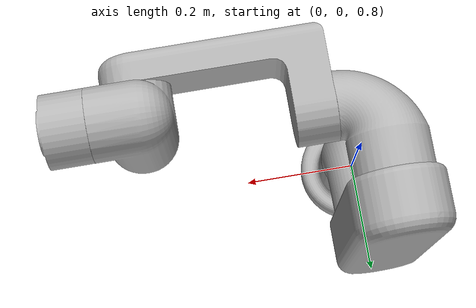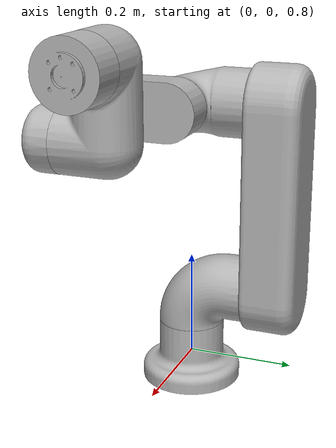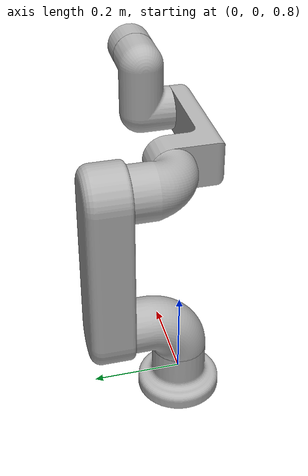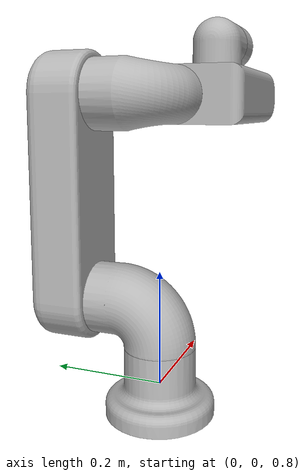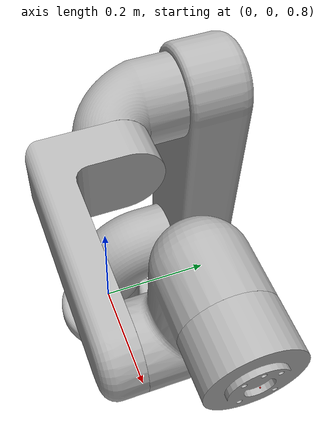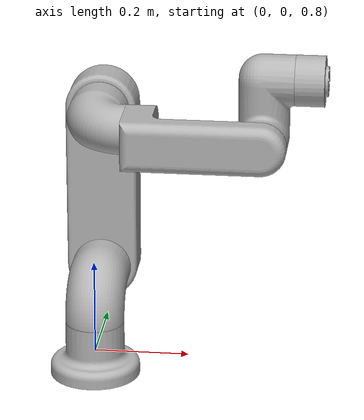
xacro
<?xml version="1.0"?>
<robot xmlns:xacro="http://www.ros.org/wiki/xacro" name="owr">

    <xacro:arg name="transmission_hw_interface" default="hardware_interface/PositionJointInterface" />

    <xacro:include filename="$(find owr_description)/urdf/owr.transmission.xacro" />
    <xacro:include filename="$(find owr_description)/urdf/owr.gazebo.xacro" />

    <!-- camera sensor -->

    <!-- common gazebo stuff -->
    <xacro:include filename="$(find owr_description)/urdf/common.gazebo.xacro" />

    <!-- OWR -->
    <xacro:include filename="$(find owr_description)/urdf/owr.urdf.xacro" />

    <!-- GRIPPER -->

    <xacro:owr_robot prefix="" sim="true"/>
    <xacro:owr_arm_transmission prefix="" hw_interface="$(arg transmission_hw_interface)" />
    <xacro:owr_arm_gazebo prefix=""/>

    <link name="world" />

    <!--Note that the object is fixed to the world at the position
        we specify in the joint, not the parameters we give to spawn_model -->
    <joint name="world_joint" type="fixed">
        <parent link="world" />
        <child link="base_link" />
        <origin xyz="0.0 0.0 0.75" rpy="0.0 0.0 0.0" />
    </joint>

    <!-- distance(EEF_Link, grasp_link) = 0.085 -->

</robot>

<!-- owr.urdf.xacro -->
<robot name="owr_arm" xmlns:xacro="http://www.ros.org/wiki/xacro">

    <!-- Inertia parameters -->
    <!-- With soft limits -->

    <!-- Without soft limits -->
    <xacro:property name="BJ_lower_limit" value="${-2/3*pi}" />
    <xacro:property name="BJ_upper_limit" value="${2/3*pi}" />
    <xacro:property name="SJ_lower_limit" value="${-pi/2}" />
    <xacro:property name="SJ_upper_limit" value="${pi/2}" />
    <xacro:property name="EJ_lower_limit" value="${-pi-pi/4}" />
    <xacro:property name="EJ_upper_limit" value="${pi/3}" />
    <xacro:property name="W1J_lower_limit" value="${-pi/2}" />
    <xacro:property name="W1J_upper_limit" value="${pi/2}" />
    <xacro:property name="W2J_lower_limit" value="${-pi/3}" />
    <xacro:property name="W2J_upper_limit" value="${pi-pi/6}" />
    <xacro:property name="W3J_lower_limit" value="${-pi}" />
    <xacro:property name="W3J_upper_limit" value="${pi}" />

    <xacro:property name="bl_mass" value="2.00431395827099" />
    <xacro:property name="bsl_mass" value="1.97583366234436" />
    <xacro:property name="sel_mass" value="6.92438507119168" />
    <xacro:property name="ew1l_mass" value="1.64092408380158" />
    <xacro:property name="w1w2l_mass" value="2.38378471545783" />
    <xacro:property name="w2w3l_mass" value="2.16776601749277" />
    <xacro:property name="w3eefl_mass" value="0.542548240711207" />

    <xacro:property name="BJ_effort" value="200" />
    <xacro:property name="SJ_effort" value="200" />
    <xacro:property name="EJ_effort" value="200" />
    <xacro:property name="W1J_effort" value="200" />
    <xacro:property name="W2J_effort" value="200" />
    <xacro:property name="W3J_effort" value="200" />

    <xacro:property name="BJ_vel" value="5" />
    <xacro:property name="SJ_vel" value="5" />
    <xacro:property name="EJ_vel" value="5" />
    <xacro:property name="W1J_vel" value="5" />
    <xacro:property name="W2J_vel" value="5" />
    <xacro:property name="W3J_vel" value="5" />

    <xacro:property name="prefix_stl" value="file://$(find owr_description)/meshes/collision" />
    <xacro:property name="bl_stl" value="${prefix_stl}/base_link.STL" />
    <xacro:property name="bsl_stl" value="${prefix_stl}/BS_Link.STL" />
    <xacro:property name="sel_stl" value="${prefix_stl}/SE_Link.STL" />
    <xacro:property name="ew1l_stl" value="${prefix_stl}/EW1_Link.STL" />
    <xacro:property name="w1w2l_stl" value="${prefix_stl}/W12_Link.STL" />
    <xacro:property name="w2w3l_stl" value="${prefix_stl}/W23_Link.STL" />
    <xacro:property name="w3eefl_stl" value="${prefix_stl}/W3Eff_Link.STL" />

    <xacro:property name="prefix_dae" value="file://$(find owr_description)/meshes/visual" />
    <xacro:property name="bl_dae" value="${prefix_dae}/base.dae" />
    <xacro:property name="bsl_dae" value="${prefix_dae}/bs.dae" />
    <xacro:property name="sel_dae" value="${prefix_dae}/be.dae" />
    <xacro:property name="ew1l_dae" value="${prefix_dae}/EW1.dae" />
    <xacro:property name="w1w2l_dae" value="${prefix_dae}/w12.dae" />
    <xacro:property name="w2w3l_dae" value="${prefix_dae}/W23.dae" />
    <xacro:property name="w3eefl_dae" value="${prefix_dae}/w3eff.dae" />

    <xacro:macro name="owr_robot" params="prefix sim:=true">

        <link name="${prefix}base_link">
            <inertial>
                <origin xyz="3.26945350830445E-18 0.0475560449135545 1.03923298601914E-18" rpy="0 0 0" />
                <mass value="${bl_mass}" />
                <inertia ixx="0.00559780558915754" ixy="2.08121312953797E-19" ixz="-2.03088203267664E-36" iyy="0.00632266595300574" iyz="3.02972434618886E-20" izz="0.00559780558915754" />
            </inertial>
            <visual>
                <origin xyz="0 0 0" rpy="0 0 0" />
                <geometry>
                    <mesh filename="${bl_stl}" />
                </geometry>
                <geometry>
                    <mesh filename="${bl_dae}"/>
                </geometry>
                <material name="LightGrey">
                    <color rgba="0.7 0.7 0.7 1.0"/>
                </material>
            </visual>
            <collision>
                <origin xyz="0 0 0" rpy="0 0 0" />
                <geometry>
                    <mesh filename="${bl_stl}" />
                </geometry>
            </collision>
        </link>

        <joint name="${prefix}BJ" type="revolute">
            <origin xyz="0 0 0.1181" rpy="0 0 0" />
            <parent link="${prefix}base_link" />
            <child link="${prefix}BS_Link" />
            <axis xyz="0 0 1" />
            <limit lower="${BJ_lower_limit}" upper="${BJ_upper_limit}" effort="${BJ_effort}" velocity="${BJ_vel}" />

            <!-- particularly useful for simulation -->
            <dynamics damping="0.0" friction="0.0"/>
        </joint>

        <link name="${prefix}BS_Link">
            <inertial>
                <origin xyz="-2.23815285813307E-07 0.0379790003524418 0.0624393623259869" rpy="0 0 0" />
                <mass value="${bsl_mass}" />
                <inertia ixx="0.00633633680688803" ixy="5.53297653948722E-09" ixz="1.10027473238432E-08" iyy="0.00431174755033153" iyz="-0.00121307806869219" izz="0.00588373141716525" />
            </inertial>
            <visual>
                <origin xyz="0 0 0" rpy="0 0 0" />
                <geometry>
                    <mesh filename="${bsl_stl}" />
                </geometry>
                <material name="LightGrey">
                    <color rgba="0.7 0.7 0.7 1.0"/>
                </material>
            </visual>
            <collision>
                <origin xyz="0 0 0" rpy="0 0 0" />
                <geometry>
                    <mesh filename="${bsl_stl}" />
                </geometry>
            </collision>
        </link>

        <joint name="${prefix}SJ" type="revolute">
            <origin xyz="0 0.1157 0.0775" rpy="0 0 0" />
            <parent link="${prefix}BS_Link" />
            <child link="${prefix}SE_Link" />
            <axis xyz="0 1 0" />
            <limit lower="${SJ_lower_limit}" upper="${SJ_upper_limit}" effort="${SJ_effort}" velocity="${SJ_vel}" />

            <!-- particularly useful for simulation -->
            <dynamics damping="0.0" friction="0.0"/>
        </joint>

        <link name="${prefix}SE_Link">
            <inertial>
                <origin xyz="2.50150839169102E-18 0.0491871756151301 0.177875" rpy="0 0 0" />
                <mass value="${sel_mass}" />
                <inertia ixx="0.13565458366121" ixy="1.62637671478552E-19" ixz="-3.10060648119612E-18" iyy="0.141881889957825" iyz="1.26283834369711E-17" izz="0.01733034956749" />
            </inertial>
            <visual>
                <origin xyz="0 0 0" rpy="0 0 0" />
                <geometry>
                    <mesh filename="${sel_stl}" />
                </geometry>
                <material name="LightGrey">
                    <color rgba="0.7 0.7 0.7 1.0"/>
                </material>
            </visual>
            <collision>
                <origin xyz="0 0 0" rpy="0 0 0" />
                <geometry>
                    <mesh filename="${sel_stl}" />
                </geometry>
            </collision>
        </link>

        <joint name="${prefix}EJ" type="revolute">
            <origin xyz="0 0 0.35575" rpy="0 0 0" />
            <parent link="${prefix}SE_Link" />
            <child link="${prefix}EW1_Link" />
            <axis xyz="0 1 0" />
            <limit lower="${EJ_lower_limit}" upper="${EJ_upper_limit}" effort="${EJ_effort}" velocity="${EJ_vel}" />

            <!-- particularly useful for simulation -->
            <dynamics damping="0.0" friction="0.0"/>
        </joint>

        <link name="${prefix}EW1_Link">
            <inertial>
                <origin xyz="0.00964296883173089 -0.069409712721787 6.49394750775745E-05" rpy="0 0 0" />
                <mass value="${ew1l_mass}" />
                <inertia ixx="0.00433302226551719" ixy="0.000795034760133281" ixz="2.13272246028262E-07" iyy="0.00315022911015594" iyz="2.61373190609785E-06" izz="0.004670087340654" />
            </inertial>
            <visual>
                <origin xyz="0 0 0" rpy="0 0 0" />
                <geometry>
                    <mesh filename="${ew1l_stl}" />
                </geometry>
                <material name="LightGrey">
                    <color rgba="0.7 0.7 0.7 1.0"/>
                </material>
            </visual>
            <collision>
                <origin xyz="0 0 0" rpy="0 0 0" />
                <geometry>
                    <mesh filename="${ew1l_stl}" />
                </geometry>
            </collision>
        </link>

        <joint name="${prefix}W1J" type="revolute">
            <origin xyz="0.0695 -0.1157 0" rpy="0 0 0" />
            <parent link="${prefix}EW1_Link" />
            <child link="${prefix}W1W2_Link" />
            <axis xyz="1 0 0" />
            <limit lower="${W1J_lower_limit}" upper="${W1J_upper_limit}" effort="${W1J_effort}" velocity="${W1J_vel}" />

            <!-- particularly useful for simulation -->
            <dynamics damping="0.0" friction="0.0"/>
        </joint>

        <link name="${prefix}W1W2_Link">
            <inertial>
                <origin xyz="0.122416824512388 -0.070835232118926 -6.35496342438202E-07" rpy="0 0 0" />
                <mass value="${w1w2l_mass}" />
                <inertia ixx="0.00656420598358183" ixy="0.00554676162331256" ixz="-1.42658921336938E-08" iyy="0.0257284659921832" iyz="5.99320555321235E-08" izz="0.0282762053128848" />
            </inertial>
            <visual>
                <origin xyz="0 0 0" rpy="0 0 0" />
                <geometry>
                    <mesh filename="${w1w2l_stl}" />
                </geometry>
                <material name="LightGrey">
                    <color rgba="0.7 0.7 0.7 1.0"/>
                </material>
            </visual>
            <collision>
                <origin xyz="0 0 0" rpy="0 0 0" />
                <geometry>
                    <mesh filename="${w1w2l_stl}" />
                </geometry>
            </collision>
        </link>

        <joint name="${prefix}W2J" type="revolute">
            <origin xyz="0.28625 0 0" rpy="0 0 0" />
            <parent link="${prefix}W1W2_Link" />
            <child link="${prefix}W2W3_Link" />
            <axis xyz="0 1 0" />
            <limit lower="${W2J_lower_limit}" upper="${W2J_upper_limit}" effort="${W2J_effort}" velocity="${W2J_vel}" />

            <!-- particularly useful for simulation -->
            <dynamics damping="0.0" friction="0.0"/>
        </joint>

        <link name="${prefix}W2W3_Link">
            <inertial>
                <origin xyz="0.00448693932692878 -0.00693126827424433 0.0578431512744524" rpy="0 0 0" />
                <mass value="${w2w3l_mass}" />
                <inertia ixx="0.00982478610028387" ixy="-6.74414524982295E-05" ixz="-0.000653082358596031" iyy="0.00957809977704417" iyz="-0.000917655229213172" izz="0.00385756520688612" />
            </inertial>
            <visual>
                <origin xyz="0 0 0" rpy="0 0 0" />
                <geometry>
                    <mesh filename="${w2w3l_stl}" />
                </geometry>
                <material name="LightGrey">
                    <color rgba="0.7 0.7 0.7 1.0"/>
                </material>
            </visual>
            <collision>
                <origin xyz="0 0 0" rpy="0 0 0" />
                <geometry>
                    <mesh filename="${w2w3l_stl}" />
                </geometry>
            </collision>
        </link>

        <joint name="${prefix}W3J" type="revolute">
            <origin xyz="0.0635 0 0.12" rpy="0 0 0" />
            <parent link="${prefix}W2W3_Link" />
            <child link="${prefix}W3EEF_Link" />
            <axis xyz="1 0 0" />
            <limit lower="${W3J_lower_limit}" upper="${W3J_upper_limit}" effort="${W3J_effort}" velocity="${W3J_vel}" />

            <!-- particularly useful for simulation -->
            <dynamics damping="0.0" friction="0.0"/>
        </joint>

        <link name="${prefix}W3EEF_Link">
            <inertial>
                <origin xyz="0.0313921684941835 5.73430521827697E-08 -7.81709305108791E-06" rpy="0 0 0" />
                <mass value="${w3eefl_mass}" />
                <inertia ixx="0.00073681574143187" ixy="8.23684417617962E-22" ixz="1.40415282317197E-07" iyy="0.000548089226198482" iyz="3.0678420032912E-20" izz="0.000548195288104005" />
            </inertial>
            <visual>
                <origin xyz="0 0 0" rpy="0 0 0" />
                <geometry>
                    <mesh filename="${w3eefl_stl}" />
                </geometry>
                <material name="LightGrey">
                    <color rgba="0.7 0.7 0.7 1.0"/>
                </material>
            </visual>
            <collision>
                <origin xyz="0 0 0" rpy="0 0 0" />
                <geometry>
                    <mesh filename="${w3eefl_stl}" />
                </geometry>
            </collision>
        </link>

        <joint name="${prefix}eef_fixed_joint" type="fixed">
            <parent link="${prefix}W3EEF_Link" />
            <child link = "${prefix}EEF_Link" />
            <origin xyz="0.0675 0 0" rpy="0 0 0" />
        </joint>

        <link name="${prefix}EEF_Link">
            <collision>
                <geometry>
                    <box size="0.001 0.001 0.001"/>
                </geometry>
                <origin rpy="0 0 0" xyz="0 0 0"/>
            </collision>
            <visual>
                <origin xyz="0 0 0" rpy="0 0 0" />
                <geometry>
                    <box size="0.001 0.001 0.001"/>
                </geometry>
                <material name="">
                    <color rgba="1 0 0 1.0"/>
                </material>
            </visual>
        </link>

        <!--
            base_footprint is a fictitious link(frame) that is on the ground
            right below base_link origin
        -->
        <xacro:unless value="${sim}">
            <link name="${prefix}base_footprint" />

            <joint name="${prefix}base_footprint_joint" type="fixed">
                <parent link="${prefix}base_footprint" />
                <child link="${prefix}base_link" />
            </joint>
      </xacro:unless>
    </xacro:macro>
</robot>
